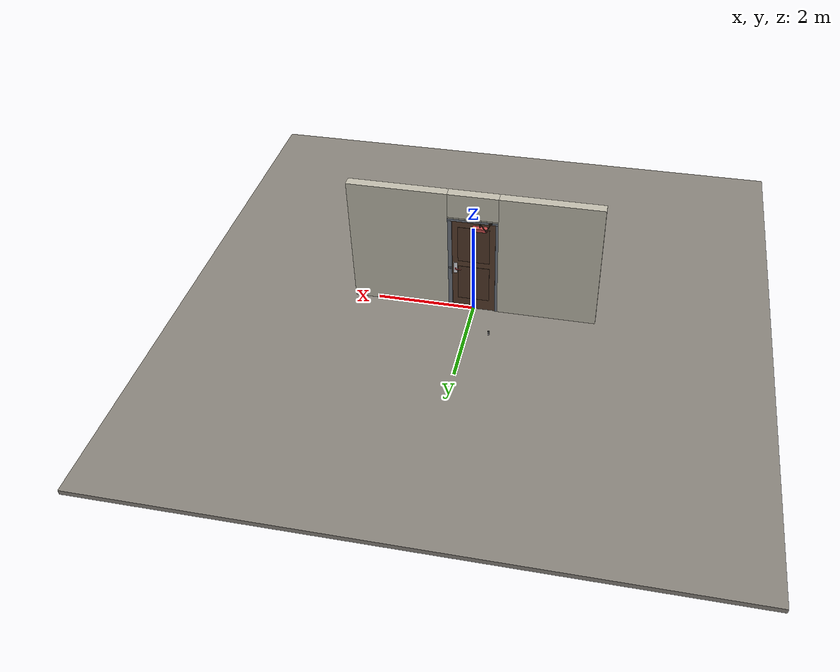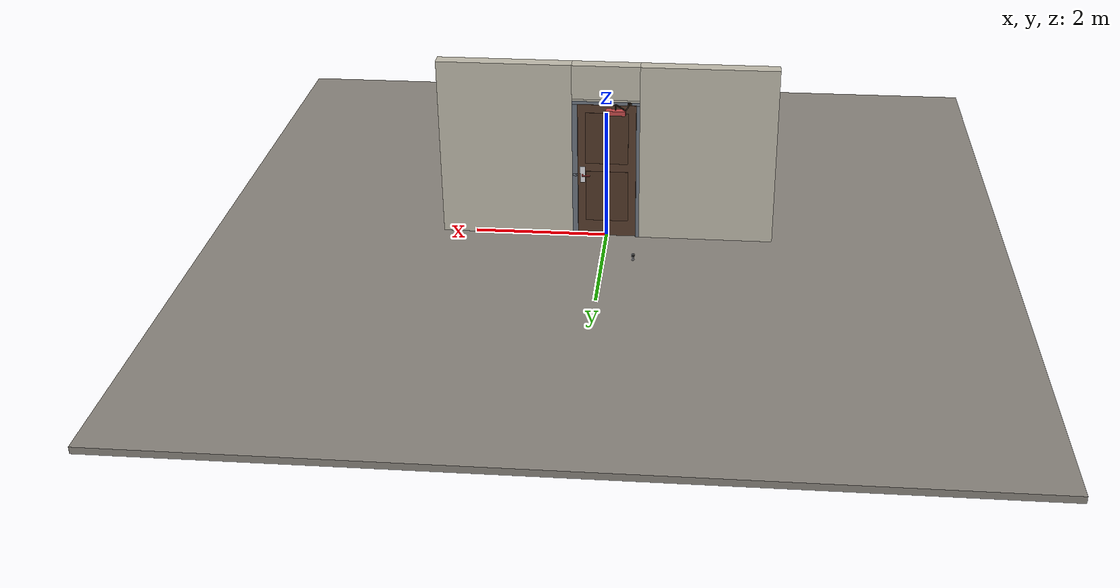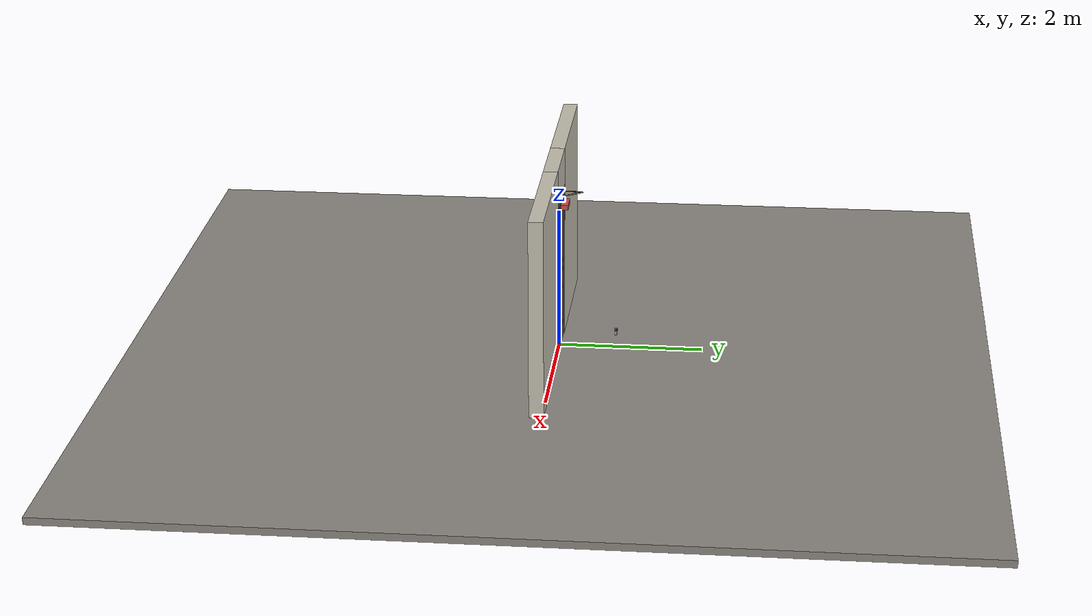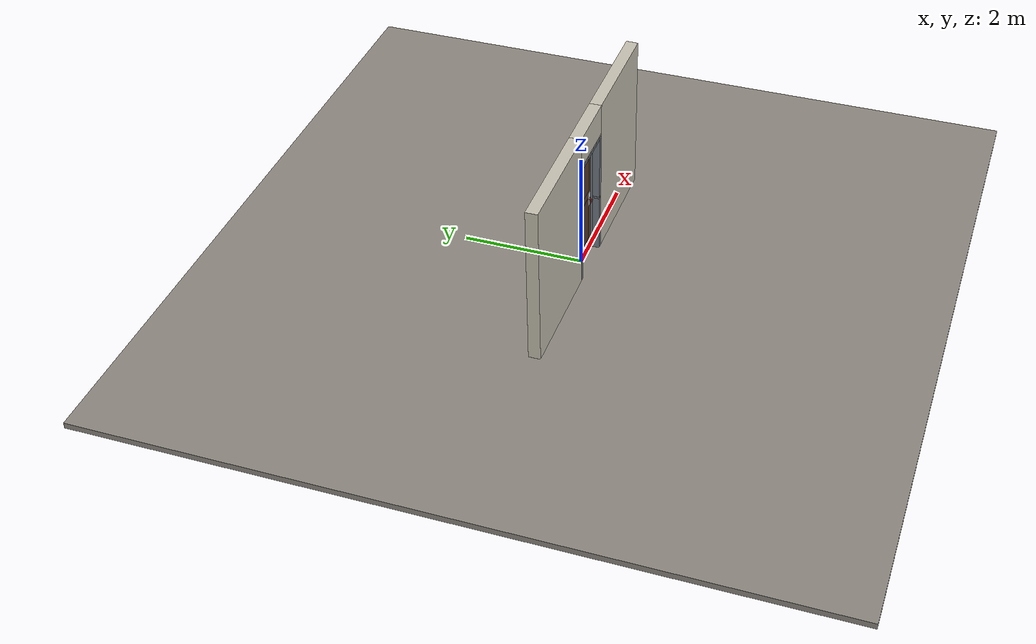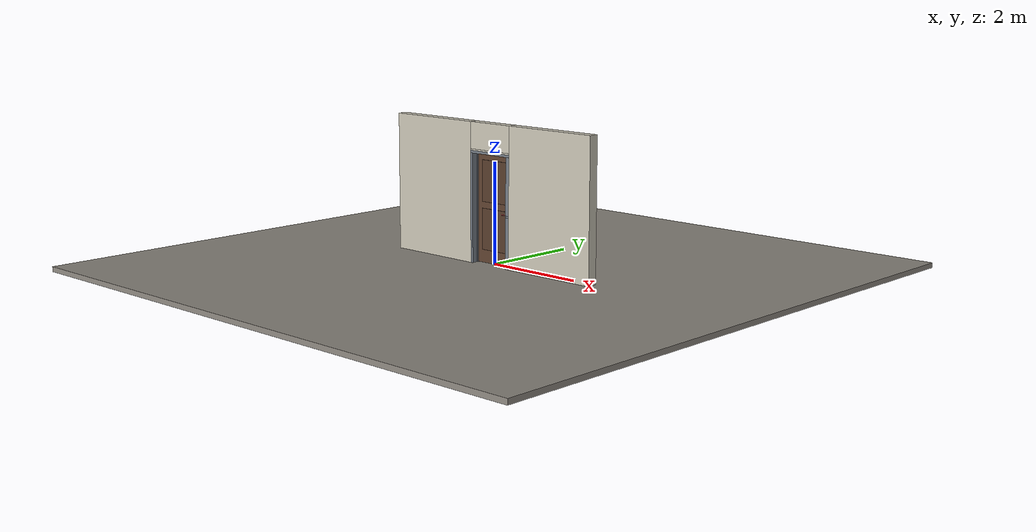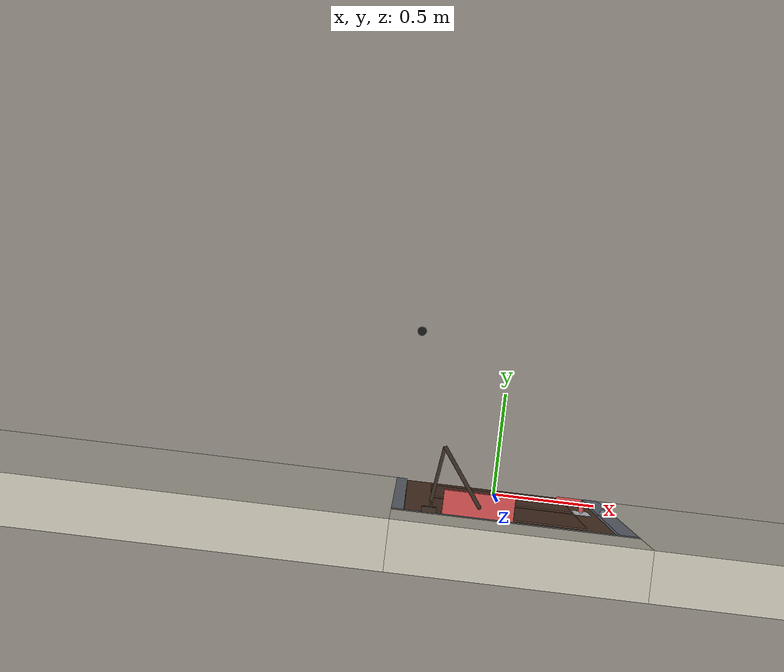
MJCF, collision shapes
<?xml version="1.0" ?>
<mujoco model="db0762_swing_single_full">
  <compiler angle="radian" meshdir="../../hardware" texturedir="../../textures" autolimits="true" inertiafromgeom="false"/>
  <option timestep="0.002" integrator="implicitfast" cone="elliptic" impratio="10" noslip_iterations="3">
    <flag multiccd="enable"/>
  </option>
  <size memory="16M"/>
  <default>
    <geom condim="4" solref="0.005 1" solimp="0.95 0.99 0.001"/>
    <joint solreflimit="0.005 1" solimplimit="0.95 0.99 0.001"/>
    <tendon solreflimit="0.005 1"/>
    <equality solref="0.002 1"/>
  </default>
  <visual>
    <headlight ambient="0.4 0.4 0.4" diffuse="0.7 0.7 0.7" specular="0.2 0.2 0.2"/>
    <quality shadowsize="4096"/>
    <map znear="0.01" zfar="60"/>
  </visual>
  <asset>
    <mesh name="card_reader_38c0bdb077" file="card_reader_38c0bdb077.obj"/>
    <mesh name="closer_body_fdc4667657" file="closer_body_fdc4667657.obj"/>
    <mesh name="hinge_e22b26c0c1" file="hinge_e22b26c0c1.obj"/>
    <mesh name="hinge_jamb_e1d088f8dc" file="hinge_jamb_e1d088f8dc.obj"/>
    <mesh name="lever_56c65af20a" file="lever_56c65af20a.obj"/>
    <mesh name="peephole_f829311a59" file="peephole_f829311a59.obj"/>
    <material name="mat_floor" rgba="0.55 0.53 0.5 1" specular="0.2" shininess="0.15" reflectance="0"/>
    <material name="mat_wall" rgba="0.78 0.76 0.7 1" specular="0.2" shininess="0.1" reflectance="0"/>
    <material name="mat_leaf" rgba="0.36 0.25 0.18 1" specular="0.2" shininess="0.55" reflectance="0"/>
    <material name="mat_leaf_panel" rgba="0.331 0.23 0.166 1" specular="0.2" shininess="0.55" reflectance="0"/>
    <material name="mat_hinge" rgba="0.65 0.66 0.68 1" specular="0.74" shininess="0.5" reflectance="0.36"/>
    <material name="mat_op_chrome" rgba="0.9 0.9 0.92 1" specular="0.8" shininess="0.9" reflectance="0.4"/>
    <material name="mat_trim" rgba="0.85 0.66 0.3 1" specular="0.8" shininess="0.75" reflectance="0.4"/>
    <material name="mat_reader" rgba="0.05 0.05 0.05 1" specular="0.38" shininess="0.3" reflectance="0.12"/>
    <material name="mat_bolt" rgba="0.75 0.76 0.77 1" specular="0.8" shininess="0.65" reflectance="0.4"/>
    <material name="mat_frame" rgba="0.45 0.48 0.52 1" specular="0.32" shininess="0.6" reflectance="0.08"/>
    <material name="mat_closer" rgba="0.22 0.17 0.13 1" specular="0.8" shininess="0.6" reflectance="0.4"/>
    <material name="mat_peephole" rgba="0.85 0.66 0.3 1" specular="0.8" shininess="0.75" reflectance="0.4"/>
    <material name="mat_bumper_stop" rgba="0.08 0.08 0.08 1" specular="0.2" shininess="0.1" reflectance="0"/>
    <material name="mat_stop_base" rgba="0.9 0.9 0.92 1" specular="0.8" shininess="0.9" reflectance="0.4"/>
    <texture name="skybox" type="skybox" builtin="gradient" rgb1="0.6 0.7 0.85" rgb2="0.9 0.92 0.95" width="256" height="256"/>
  </asset>
  <worldbody>
    <light name="sun" pos="1.5 -2.5 4" dir="-0.3 0.5 -0.8" directional="true" diffuse="0.8 0.8 0.8" specular="0.3 0.3 0.3" castshadow="true"/>
    <light name="fill" pos="-1.5 2.5 3" dir="0.3 -0.5 -0.7" directional="true" diffuse="0.35 0.35 0.4" castshadow="false"/>
    <camera name="robot_view" pos="0 -2.708813 1.812087" xyaxes="1 0 0 0 0.26963 0.962964" fovy="52"/>
    <camera name="far_view" pos="0 2.566812 1.812087" xyaxes="-1 0 0 0 -0.26963 0.962964" fovy="52"/>
    <camera name="iso" pos="2.004737 -2.286763 2.234138" xyaxes="0.741536 0.670913 0 -0.242917 0.268487 0.932151" fovy="46"/>
    <camera name="detail_handle" pos="0.445 -0.877 1.296" xyaxes="0.97561 0.219512 0 -0.070934 0.315262 0.94635" fovy="38"/>
    <geom name="floor" type="box" size="6 6 0.05" pos="0 0 -0.05" material="mat_floor" group="0" contype="1" conaffinity="1" friction="0.8 0.005 0.0001" density="2400"/>
    <geom name="wall_left" type="box" size="1.007 0.1 1.3735" pos="-1.493 -0.071 1.3735" material="mat_wall" group="0" contype="1" conaffinity="1" friction="0.6 0.005 0.0001" density="800"/>
    <geom name="wall_right" type="box" size="0.992 0.1 1.3735" pos="1.508 -0.071 1.3735" material="mat_wall" group="0" contype="1" conaffinity="1" friction="0.6 0.005 0.0001" density="800"/>
    <geom name="wall_header" type="box" size="0.501 0.1 0.26" pos="0.015 -0.071 2.487" material="mat_wall" group="0" contype="1" conaffinity="1" friction="0.6 0.005 0.0001" density="800"/>
    <geom name="hinge_0_jamb" type="mesh" mesh="hinge_jamb_e1d088f8dc" pos="-0.433 0.029 0.259" quat="0 1 0 0" material="mat_hinge" group="1" contype="0" conaffinity="0" density="7850"/>
    <geom name="hinge_1_jamb" type="mesh" mesh="hinge_jamb_e1d088f8dc" pos="-0.433 0.029 1.076" quat="0 1 0 0" material="mat_hinge" group="1" contype="0" conaffinity="0" density="7850"/>
    <geom name="hinge_2_jamb" type="mesh" mesh="hinge_jamb_e1d088f8dc" pos="-0.433 0.029 1.963" quat="0 1 0 0" material="mat_hinge" group="1" contype="0" conaffinity="0" density="7850"/>
    <geom name="jamb_hinge" type="box" size="0.025 0.1 1.0735" pos="-0.461 -0.071 1.0735" material="mat_frame" group="0" contype="1" conaffinity="1" friction="0.6 0.005 0.0001" density="300"/>
    <geom name="strike_1016_wall_n" type="box" size="0.04 0.08075 0.018" pos="0.476 -0.09025 1.016" material="mat_frame" group="0" contype="1" conaffinity="1" friction="0.6 0.005 0.0001" density="300"/>
    <geom name="strike_1016_wall_p" type="box" size="0.04 0.008 0.018" pos="0.476 0.0175 1.016" material="mat_frame" group="0" contype="1" conaffinity="1" friction="0.6 0.005 0.0001" density="300"/>
    <geom name="strike_1016_ramp" type="box" size="0.04 0.018028 0.018" pos="0.479282 0.018312 1.016" quat="0.957092 0 0 -0.289784" material="mat_frame" group="0" contype="1" conaffinity="1" friction="0.12 0.005 0.0001" density="300"/>
    <geom name="strike_1016_back" type="box" size="0.0285 0.0095 0.018" pos="0.4875 0 1.016" material="mat_frame" group="0" contype="1" conaffinity="1" friction="0.6 0.005 0.0001" density="300"/>
    <geom name="jamb_strike_0" type="box" size="0.04 0.1 0.499" pos="0.476 -0.071 0.499" material="mat_frame" group="0" contype="1" conaffinity="1" friction="0.6 0.005 0.0001" density="300"/>
    <geom name="jamb_strike_1" type="box" size="0.04 0.1 0.5565" pos="0.476 -0.071 1.5905" material="mat_frame" group="0" contype="1" conaffinity="1" friction="0.6 0.005 0.0001" density="300"/>
    <geom name="jamb_head" type="box" size="0.501 0.1 0.025" pos="0.015 -0.071 2.172" material="mat_frame" group="0" contype="1" conaffinity="1" friction="0.6 0.005 0.0001" density="300"/>
    <geom name="head_stud" type="box" size="0.501 0.1 0.015" pos="0.015 -0.071 2.212" material="mat_wall" group="0" contype="1" conaffinity="1" friction="0.6 0.005 0.0001" density="500"/>
    <geom name="stop_hinge" type="box" size="0.0055 0.016 1.0735" pos="-0.4305 -0.0385 1.0735" material="mat_frame" group="0" contype="1" conaffinity="1" friction="0.6 0.005 0.0001" density="300"/>
    <geom name="stop_strike" type="box" size="0.0055 0.016 1.0735" pos="0.4305 -0.0385 1.0735" material="mat_frame" group="0" contype="1" conaffinity="1" friction="0.6 0.005 0.0001" density="300"/>
    <geom name="stop_head" type="box" size="0.436 0.016 0.0055" pos="0 -0.0385 2.1415" material="mat_frame" group="0" contype="1" conaffinity="1" friction="0.6 0.005 0.0001" density="300"/>
    <geom name="closer_bracket" type="box" size="0.03 0.012 0.014" pos="-0.336 0.041 2.177" material="mat_closer" group="1" contype="0" conaffinity="0" density="2700"/>
    <geom name="door_stop_base" type="cylinder" size="0.022 0.003" pos="-0.449 0.7634 0.003" material="mat_stop_base" group="0" contype="1" conaffinity="1" friction="0.6 0.005 0.0001" density="7850"/>
    <geom name="door_stop_post" type="cylinder" size="0.012 0.0245" pos="-0.449 0.7634 0.0305" material="mat_stop_base" group="0" contype="1" conaffinity="1" friction="0.6 0.005 0.0001" density="7850"/>
    <geom name="door_stop_bumper" type="cylinder" size="0.022 0.02" pos="-0.449 0.7634 0.075" material="mat_bumper_stop" group="0" contype="1" conaffinity="1" friction="0.6 0.005 0.0001" density="1100"/>
    <site name="approach_point" pos="0 -1.5 0" quat="1 0 0 0" size="0.05" rgba="0.2 0.9 0.2 0.5" group="4"/>
    <site name="goal_point" pos="0 1.5 0" quat="1 0 0 0" size="0.05" rgba="0.2 0.9 0.2 0.5" group="4"/>
    <site name="door_plane_center" pos="0 0 1.0735" quat="1 0 0 0" size="0.02" rgba="0.2 0.9 0.2 0.5" group="4"/>
    <body name="leaf" pos="-0.436 0 0">
      <inertial pos="0.40649 0.016608 1.29523" mass="56.500761" quat="-0.474182 0.496478 0.516075 0.51218" diaginertia="3.122751131 25.84696428 28.871960978"/>
      <joint name="leaf_hinge" type="hinge" axis="0 0 1" pos="0.003 0.029 0" limited="true" range="0 1.570796" damping="12.214767" frictionloss="0.165227" stiffness="10.994423" springref="-2.062864" armature="0.02"/>
      <geom name="leaf_slab" type="box" size="0.432 0.022 1.067" pos="0.435 0 1.076" material="mat_leaf" group="0" contype="1" conaffinity="1" friction="0.35 0.005 0.0001" density="1"/>
      <geom name="leaf_panel_0_n" type="box" size="0.31696 0.003 0.40564" pos="0.435 -0.025 0.66938" material="mat_leaf_panel" group="1" contype="0" conaffinity="0" density="1"/>
      <geom name="leaf_panel_0_p" type="box" size="0.31696 0.003 0.40564" pos="0.435 0.025 0.66938" material="mat_leaf_panel" group="1" contype="0" conaffinity="0" density="1"/>
      <geom name="leaf_panel_1_n" type="box" size="0.31696 0.003 0.40564" pos="0.435 -0.025 1.61066" material="mat_leaf_panel" group="1" contype="0" conaffinity="0" density="1"/>
      <geom name="leaf_panel_1_p" type="box" size="0.31696 0.003 0.40564" pos="0.435 0.025 1.61066" material="mat_leaf_panel" group="1" contype="0" conaffinity="0" density="1"/>
      <geom name="hinge_0" type="mesh" mesh="hinge_e22b26c0c1" pos="0.003 0.029 0.259" quat="0 1 0 0" material="mat_hinge" group="1" contype="0" conaffinity="0" density="7850"/>
      <geom name="hinge_1" type="mesh" mesh="hinge_e22b26c0c1" pos="0.003 0.029 1.076" quat="0 1 0 0" material="mat_hinge" group="1" contype="0" conaffinity="0" density="7850"/>
      <geom name="hinge_2" type="mesh" mesh="hinge_e22b26c0c1" pos="0.003 0.029 1.963" quat="0 1 0 0" material="mat_hinge" group="1" contype="0" conaffinity="0" density="7850"/>
      <geom name="leaf_handle_escutcheon_n" type="box" size="0.0375 0.0015 0.13" pos="0.797 -0.0235 1.016" material="mat_op_chrome" group="1" contype="0" conaffinity="0" density="3000"/>
      <geom name="leaf_handle_escutcheon_p" type="box" size="0.0375 0.0015 0.13" pos="0.797 0.0235 1.016" material="mat_op_chrome" group="1" contype="0" conaffinity="0" density="3000"/>
      <geom name="leaf_handle_reader" type="mesh" mesh="card_reader_38c0bdb077" pos="0.797 0.022 1.176" quat="0 0 0.707107 0.707107" material="mat_reader" group="1" contype="0" conaffinity="0" density="2000"/>
      <geom name="leaf_latch_bolt_faceplate" type="box" size="0.0006 0.014 0.028" pos="0.8664 0 1.016" material="mat_bolt" group="1" contype="0" conaffinity="0" density="8500"/>
      <geom name="closer_body" type="mesh" mesh="closer_body_fdc4667657" pos="0.3 0.022 2.054" quat="-0.707107 0.707107 0 0" material="mat_closer" group="1" contype="0" conaffinity="0" density="2000"/>
      <geom name="closer_body_col" type="box" size="0.145 0.05 0.035" pos="0.3 0.072 2.054" material="mat_closer" group="3" contype="1" conaffinity="1" rgba="0.8 0.3 0.3 0.25" friction="0.6 0.005 0.0001" density="2000"/>
      <geom name="closer_pinion_shaft" type="cylinder" size="0.008 0.0615" pos="0.3 0.072 2.1155" material="mat_closer" group="1" contype="0" conaffinity="0" density="2700"/>
      <geom name="peephole" type="mesh" mesh="peephole_f829311a59" pos="0.435 -0.022 1.509" quat="0.707107 0.707107 0 0" material="mat_peephole" group="2" contype="0" conaffinity="0" density="8500"/>
      <site name="leaf_edge_mid" pos="0.867 0 1.067" quat="1 0 0 0" size="0.02" rgba="0.2 0.9 0.2 0.5" group="4"/>
      <body name="leaf_handle" pos="0.797 0 1.016">
        <inertial pos="-0.034904 0 0" mass="0.739068" quat="0.707107 0 0 -0.707107" diaginertia="0.001260094 0.003272501 0.004494637"/>
        <joint name="leaf_handle_hinge" type="hinge" axis="0 -1 0" limited="true" range="0 0.87" damping="0.231314" frictionloss="0.06" stiffness="1.1" springref="-0.454545" armature="0.01"/>
        <geom name="leaf_handle_spindle" type="cylinder" size="0.006 0.034" pos="0 0 0" quat="0.707107 -0.707107 0 0" material="mat_op_chrome" group="1" contype="0" conaffinity="0" density="7850"/>
        <geom name="leaf_handle_lever_n" type="mesh" mesh="lever_56c65af20a" pos="0 -0.022 0" quat="0.707107 0.707107 0 0" material="mat_op_chrome" group="1" contype="0" conaffinity="0" density="3000"/>
        <geom name="leaf_handle_lever_col_n" type="capsule" size="0.0095 0.0505" pos="-0.06 -0.077 0" quat="0.707107 0 -0.707107 0" material="mat_op_chrome" group="3" contype="1" conaffinity="1" rgba="0.8 0.3 0.3 0.25" friction="0.7 0.01 0.0001" density="3000"/>
        <geom name="leaf_handle_hub_col_n" type="cylinder" size="0.012 0.022" pos="0 -0.052 0" quat="0.707107 -0.707107 0 0" material="mat_op_chrome" group="3" contype="1" conaffinity="1" rgba="0.8 0.3 0.3 0.25" friction="0.6 0.005 0.0001" density="3000"/>
        <geom name="leaf_handle_lever_p" type="mesh" mesh="lever_56c65af20a" pos="0 0.022 0" quat="-0.707107 0.707107 0 0" material="mat_op_chrome" group="1" contype="0" conaffinity="0" density="3000"/>
        <geom name="leaf_handle_lever_col_p" type="capsule" size="0.0095 0.0505" pos="-0.06 0.077 0" quat="0.707107 0 -0.707107 0" material="mat_op_chrome" group="3" contype="1" conaffinity="1" rgba="0.8 0.3 0.3 0.25" friction="0.7 0.01 0.0001" density="3000"/>
        <geom name="leaf_handle_hub_col_p" type="cylinder" size="0.012 0.022" pos="0 0.052 0" quat="0.707107 -0.707107 0 0" material="mat_op_chrome" group="3" contype="1" conaffinity="1" rgba="0.8 0.3 0.3 0.25" friction="0.6 0.005 0.0001" density="3000"/>
        <site name="leaf_handle_grip_n" pos="-0.096 -0.077 0" quat="1 0 0 0" size="0.012" rgba="0.2 0.9 0.2 0.5" group="4"/>
        <site name="leaf_handle_grip_p" pos="-0.096 0.077 0" quat="1 0 0 0" size="0.012" rgba="0.2 0.9 0.2 0.5" group="4"/>
      </body>
      <body name="leaf_latch_bolt" pos="0.867 0 1.016">
        <inertial pos="-0.0055 0 0" mass="0.074627" quat="0.92388 -0.382683 0 0" diaginertia="0.000002271 0.000013255 0.000013255"/>
        <joint name="leaf_latch_bolt_slide" type="slide" axis="-1 0 0" limited="true" range="0 0.019" damping="2" frictionloss="0.3" stiffness="550" springref="-0.01" armature="0.1"/>
        <geom name="leaf_latch_bolt_capsule" type="capsule" size="0.008 0.0165" pos="-0.0055 0 0" quat="0.707107 0 0.707107 0" material="mat_bolt" group="0" contype="1" conaffinity="1" friction="0.2 0.005 0.0001" density="8500"/>
      </body>
      <body name="closer_arm_main" pos="0.3 0.072 2.177" quat="0.454107 0 0 0.890947">
        <inertial pos="0.14 0 0" mass="0.12096" quat="1 0 0 0" diaginertia="0.000003588 0.00079128 0.000792852"/>
        <joint name="closer_pinion" type="hinge" axis="0 0 1" limited="false" damping="0.01" armature="0.002"/>
        <geom name="closer_arm_main_geom" type="box" size="0.14 0.008 0.005" pos="0.14 0 0" material="mat_closer" group="1" contype="0" conaffinity="0" density="2700"/>
        <body name="closer_arm_fore" pos="0.28 0 0" quat="-0.373215 0 0 -0.927745">
          <inertial pos="0.128088 0 0" mass="0.076531" quat="1 0 0 0" diaginertia="0.000001771 0.000437665 0.000438201"/>
          <joint name="closer_elbow" type="hinge" axis="0 0 1" limited="false" damping="0.01" armature="0.002"/>
          <geom name="closer_arm_fore_geom" type="box" size="0.1125 0.007 0.004" pos="0.1125 0 0" material="mat_closer" group="1" contype="0" conaffinity="0" density="2700"/>
          <geom name="closer_fore_neck" type="box" size="0.0175 0.003 0.003" pos="0.2425 0 0" material="mat_closer" group="1" contype="0" conaffinity="0" density="2700"/>
          <geom name="closer_fore_pivot" type="cylinder" size="0.005 0.012" pos="0.26 0 0" material="mat_closer" group="1" contype="0" conaffinity="0" density="2700"/>
        </body>
      </body>
    </body>
  </worldbody>
  <tendon>
    <fixed name="leaf_latch_bolt_coupling" limited="true" range="0 10">
      <joint joint="leaf_latch_bolt_slide" coef="1"/>
      <joint joint="leaf_handle_hinge" coef="-0.023457"/>
    </fixed>
  </tendon>
  <equality>
    <connect name="closer_arm_connect" body1="closer_arm_fore" body2="world" anchor="0.26 0 0" active="true"/>
  </equality>
  <contact>
    <exclude body1="closer_arm_main" body2="leaf"/>
    <exclude body1="closer_arm_fore" body2="leaf"/>
    <exclude body1="closer_arm_main" body2="closer_arm_fore"/>
  </contact>
  <sensor>
    <jointpos name="leaf_hinge_pos" joint="leaf_hinge"/>
    <jointvel name="leaf_hinge_vel" joint="leaf_hinge"/>
    <jointpos name="leaf_handle_hinge_pos" joint="leaf_handle_hinge"/>
    <jointvel name="leaf_handle_hinge_vel" joint="leaf_handle_hinge"/>
    <jointpos name="leaf_latch_bolt_slide_pos" joint="leaf_latch_bolt_slide"/>
    <jointvel name="leaf_latch_bolt_slide_vel" joint="leaf_latch_bolt_slide"/>
  </sensor>
</mujoco>
